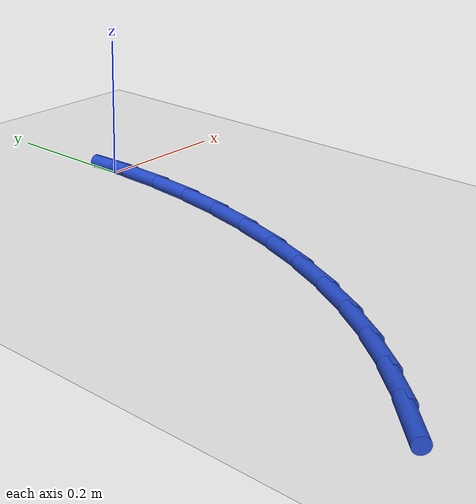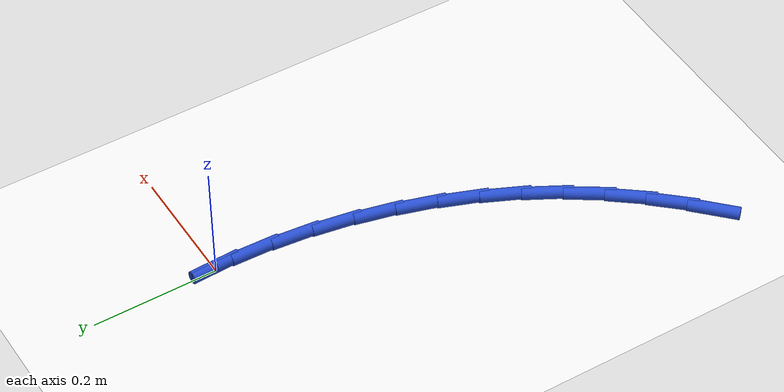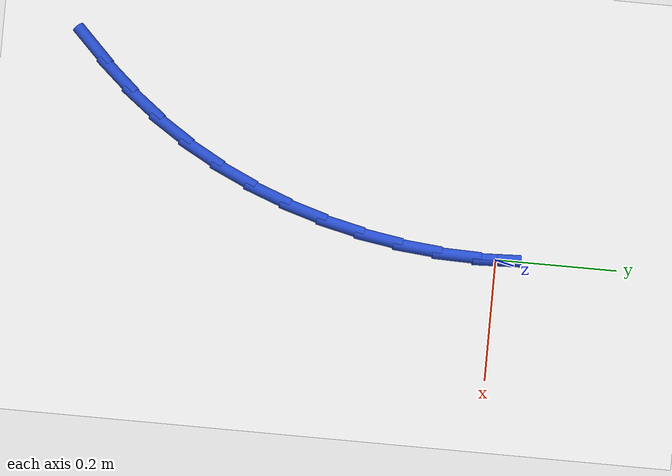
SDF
<sdf version="1.6">
 <world name="default">
  <model name="ground_plane">
   <static>1</static>
   <link name="link">
    <collision name="collision">
     <geometry><plane><normal>0 0 1</normal><size>100 100</size></plane></geometry>
     <surface><friction><ode><mu>100</mu><mu2>50</mu2></ode></friction></surface>
    </collision>
    <visual name="visual">
     <cast_shadows>0</cast_shadows>
     <geometry><plane><normal>0 0 1</normal><size>100 100</size></plane></geometry>
     <material>
      <script><uri>file://media/materials/scripts/gazebo.material</uri><name>Gazebo/WhiteGlow</name></script>
     </material>
    </visual>
   </link>
  </model>
  <model name="line">
   <link name="link_0">
    <pose>-2.0816681711721685e-17 -5.551115123125783e-17 0.01 0 1.57 -1.5298770151697054</pose>
    <collision name="collision">
     <geometry><cylinder><radius>0.01</radius><length>0.08</length></cylinder></geometry>
    </collision>
    <visual name="visual">
     <material>
      <script><name>Gazebo/Blue</name><uri>file://media/materials/scripts/gazebo.material</uri></script>
     </material>
     <geometry><cylinder><radius>0.01</radius><length>0.08</length></cylinder></geometry>
    </visual>
   </link>
   <link name="link_98">
    <pose>-0.2896244564649993 -0.6898696473172314 0.01 0 1.57 0.7775522810067924</pose>
    <collision name="collision">
     <geometry><cylinder><radius>0.01</radius><length>0.08</length></cylinder></geometry>
    </collision>
    <visual name="visual">
     <material>
      <script><name>Gazebo/Blue</name><uri>file://media/materials/scripts/gazebo.material</uri></script>
     </material>
     <geometry><cylinder><radius>0.01</radius><length>0.08</length></cylinder></geometry>
    </visual>
   </link>
   <link name="link_99">
    <pose>-0.2449438181176544 -0.6458846831342349 0.01 0 1.57 0.8415477097921217</pose>
    <collision name="collision">
     <geometry><cylinder><radius>0.01</radius><length>0.08</length></cylinder></geometry>
    </collision>
    <visual name="visual">
     <material>
      <script><name>Gazebo/Blue</name><uri>file://media/materials/scripts/gazebo.material</uri></script>
     </material>
     <geometry><cylinder><radius>0.01</radius><length>0.08</length></cylinder></geometry>
    </visual>
   </link>
   <link name="link_100">
    <pose>-0.20337243279479145 -0.5993616301402225 0.01 0 1.57 0.9139191575957717</pose>
    <collision name="collision">
     <geometry><cylinder><radius>0.01</radius><length>0.08</length></cylinder></geometry>
    </collision>
    <visual name="visual">
     <material>
      <script><name>Gazebo/Blue</name><uri>file://media/materials/scripts/gazebo.material</uri></script>
     </material>
     <geometry><cylinder><radius>0.01</radius><length>0.08</length></cylinder></geometry>
    </visual>
   </link>
   <link name="link_101">
    <pose>-0.16522984355898543 -0.5498973087844131 0.01 0 1.57 0.9925441433325416</pose>
    <collision name="collision">
     <geometry><cylinder><radius>0.01</radius><length>0.08</length></cylinder></geometry>
    </collision>
    <visual name="visual">
     <material>
      <script><name>Gazebo/Blue</name><uri>file://media/materials/scripts/gazebo.material</uri></script>
     </material>
     <geometry><cylinder><radius>0.01</radius><length>0.08</length></cylinder></geometry>
    </visual>
   </link>
   <link name="link_102">
    <pose>-0.13081232993969497 -0.4971641625700217 0.01 0 1.57 1.0698139599245844</pose>
    <collision name="collision">
     <geometry><cylinder><radius>0.01</radius><length>0.08</length></cylinder></geometry>
    </collision>
    <visual name="visual">
     <material>
      <script><name>Gazebo/Blue</name><uri>file://media/materials/scripts/gazebo.material</uri></script>
     </material>
     <geometry><cylinder><radius>0.01</radius><length>0.08</length></cylinder></geometry>
    </visual>
   </link>
   <link name="link_103">
    <pose>-0.10025477251376881 -0.44135929656601325 0.01 0 1.57 1.143322319568113</pose>
    <collision name="collision">
     <geometry><cylinder><radius>0.01</radius><length>0.08</length></cylinder></geometry>
    </collision>
    <visual name="visual">
     <material>
      <script><name>Gazebo/Blue</name><uri>file://media/materials/scripts/gazebo.material</uri></script>
     </material>
     <geometry><cylinder><radius>0.01</radius><length>0.08</length></cylinder></geometry>
    </visual>
   </link>
   <link name="link_104">
    <pose>-0.07362363779272531 -0.3829022102872482 0.01 0 1.57 1.2137586236543245</pose>
    <collision name="collision">
     <geometry><cylinder><radius>0.01</radius><length>0.08</length></cylinder></geometry>
    </collision>
    <visual name="visual">
     <material>
      <script><name>Gazebo/Blue</name><uri>file://media/materials/scripts/gazebo.material</uri></script>
     </material>
     <geometry><cylinder><radius>0.01</radius><length>0.08</length></cylinder></geometry>
    </visual>
   </link>
   <link name="link_105">
    <pose>-0.05098514530747564 -0.3222132061114994 0.01 0 1.57 1.281844946396518</pose>
    <collision name="collision">
     <geometry><cylinder><radius>0.01</radius><length>0.08</length></cylinder></geometry>
    </collision>
    <visual name="visual">
     <material>
      <script><name>Gazebo/Blue</name><uri>file://media/materials/scripts/gazebo.material</uri></script>
     </material>
     <geometry><cylinder><radius>0.01</radius><length>0.08</length></cylinder></geometry>
    </visual>
   </link>
   <link name="link_106">
    <pose>-0.03240551458892984 -0.2597125864165373 0.01 0 1.57 1.3483073304440671</pose>
    <collision name="collision">
     <geometry><cylinder><radius>0.01</radius><length>0.08</length></cylinder></geometry>
    </collision>
    <visual name="visual">
     <material>
      <script><name>Gazebo/Blue</name><uri>file://media/materials/scripts/gazebo.material</uri></script>
     </material>
     <geometry><cylinder><radius>0.01</radius><length>0.08</length></cylinder></geometry>
    </visual>
   </link>
   <link name="link_107">
    <pose>-0.017950965167998965 -0.1958206535801353 0.01 0 1.57 1.413867583819046</pose>
    <collision name="collision">
     <geometry><cylinder><radius>0.01</radius><length>0.08</length></cylinder></geometry>
    </collision>
    <visual name="visual">
     <material>
      <script><name>Gazebo/Blue</name><uri>file://media/materials/scripts/gazebo.material</uri></script>
     </material>
     <geometry><cylinder><radius>0.01</radius><length>0.08</length></cylinder></geometry>
    </visual>
   </link>
   <link name="link_108">
    <pose>-0.007687716575593214 -0.13095770998006337 0.01 0 1.57 1.4792414590650809</pose>
    <collision name="collision">
     <geometry><cylinder><radius>0.01</radius><length>0.08</length></cylinder></geometry>
    </collision>
    <visual name="visual">
     <material>
      <script><name>Gazebo/Blue</name><uri>file://media/materials/scripts/gazebo.material</uri></script>
     </material>
     <geometry><cylinder><radius>0.01</radius><length>0.08</length></cylinder></geometry>
    </visual>
   </link>
   <link name="link_109">
    <pose>-0.001681988342623418 -0.06554405799409493 0.01 0 1.57 1.545140007618784</pose>
    <collision name="collision">
     <geometry><cylinder><radius>0.01</radius><length>0.08</length></cylinder></geometry>
    </collision>
    <visual name="visual">
     <material>
      <script><name>Gazebo/Blue</name><uri>file://media/materials/scripts/gazebo.material</uri></script>
     </material>
     <geometry><cylinder><radius>0.01</radius><length>0.08</length></cylinder></geometry>
    </visual>
   </link>
   <link name="link_110">
    <pose>-2.0816681711721685e-17 -5.551115123125783e-17 0.01 0 1.57 -1.5293212989580964</pose>
    <collision name="collision">
     <geometry><cylinder><radius>0.01</radius><length>0.08</length></cylinder></geometry>
    </collision>
    <visual name="visual">
     <material>
      <script><name>Gazebo/Blue</name><uri>file://media/materials/scripts/gazebo.material</uri></script>
     </material>
     <geometry><cylinder><radius>0.01</radius><length>0.08</length></cylinder></geometry>
    </visual>
   </link>
  </model>
 </world>
</sdf>
